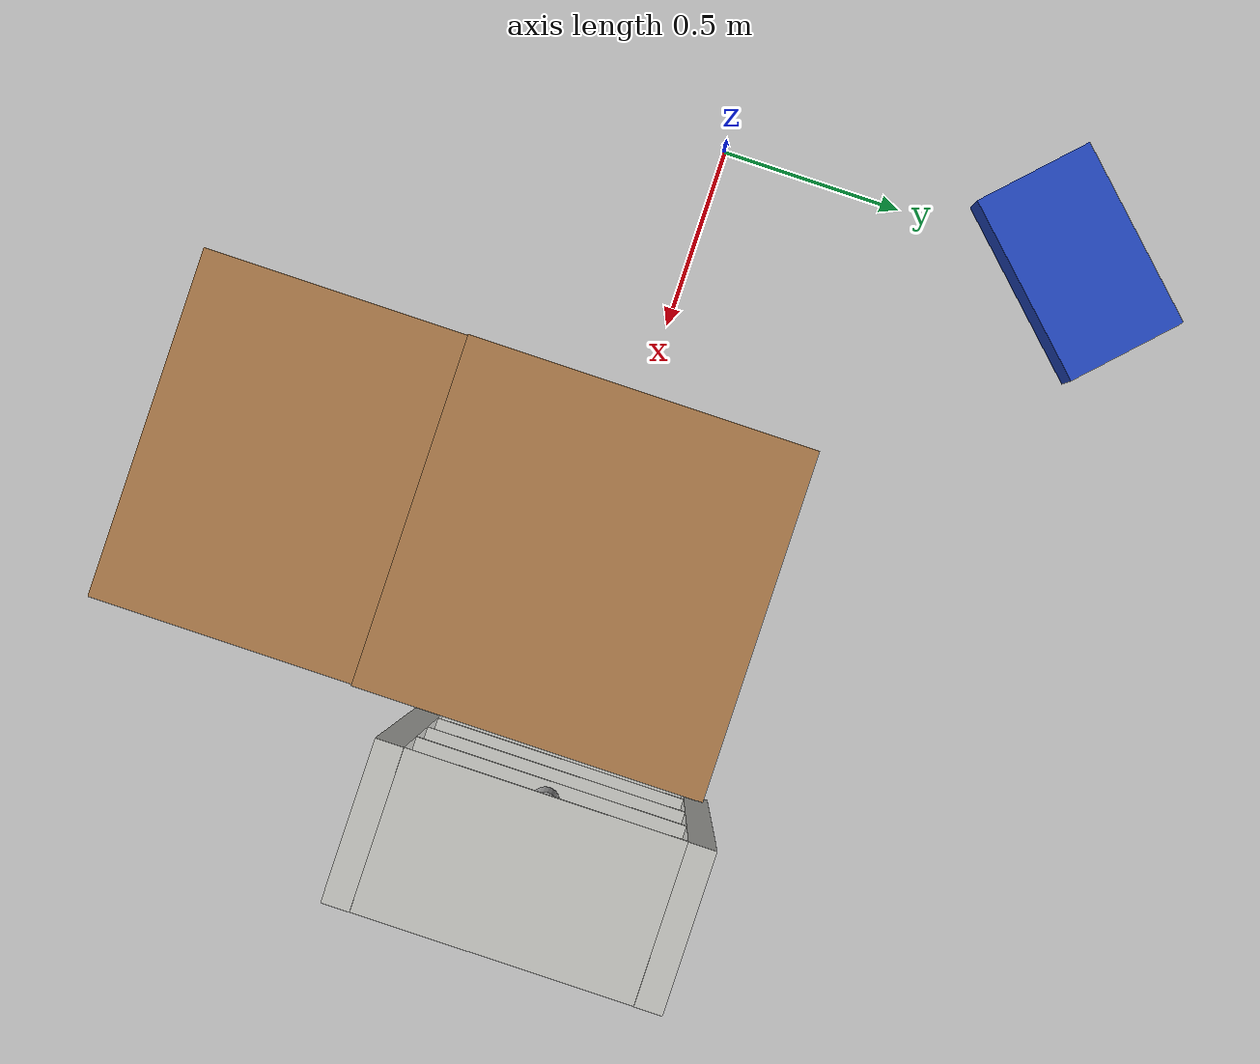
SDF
<?xml version="1.0" ?>
<sdf version="1.4">
  <!-- We use a custom world for the rrbot so that the camera angle is launched correctly -->

  <world name="default">

  <gravity>0 0 -9.81</gravity>

  <model name="ground_plane">
    <static>true</static>
    <link name="link">
      <collision name="collision">
        <geometry>
          <plane>
            <normal>0 0 1</normal>
            <size>100 100</size>
          </plane>
        </geometry>
        <surface>
          <friction>
            <ode>
              <mu>1</mu>
              <mu2>1</mu2>
            </ode>
          </friction>
        </surface>
      </collision>
      <visual name="visual">
        <cast_shadows>false</cast_shadows>
        <geometry>
          <plane>
            <normal>0 0 1</normal>
            <size>100 100</size>
          </plane>
        </geometry>
        <material>
          <script>
            <uri>file://media/materials/scripts/gazebo.material</uri>
            <name>Gazebo/Grey</name>
          </script>
        </material>
      </visual>
    </link>
  </model>

  <model name='pallet_1'>
      <pose frame=''>1.2 -0.88 0.0 0 0 0</pose>
      <link name='pallet_1'>
        <pose frame=''>0.0 0.0 0.065 0 0 1.57</pose>
        <inertial>
          <mass>5000</mass>
          <inertia>
            <ixx>400</ixx>       <!-- for a box: ixx = 0.083 * mass * (y*y + z*z) -->
            <ixy>0.0</ixy>         <!-- for a box: ixy = 0 -->
            <ixz>0.0</ixz>         <!-- for a box: ixz = 0 -->
            <iyy>400</iyy>       <!-- for a box: iyy = 0.083 * mass * (x*x + z*z) -->
            <iyz>0.0</iyz>         <!-- for a box: iyz = 0 -->
            <izz>600</izz>       <!-- for a box: izz = 0.083 * mass * (x*x + y*y) -->
          </inertia>
        </inertial>
        <collision name='pallet_1_Collision'>
          <geometry>
            <box>
              <size>0.76 1.0 0.13</size>
            </box>
          </geometry>
        </collision>
        <visual name='pallet_1_Visual'>
          <geometry>
            <box>
              <size>0.76 1.0 0.13</size>
            </box>
          </geometry>
          <material>
            <script>
              <uri>file://media/materials/scripts/gazebo.material</uri>
              <name>Gazebo/WoodPallet</name>
            </script>
            <ambient>1 1 1 1</ambient>
          </material>
          <meta>
            <layer>0</layer>
          </meta>
        </visual>
      </link>
  </model>

  <model name='pallet_2'>
      <pose frame=''>1.2 0.0 0.0 0 0 0</pose>
      <link name='pallet_2'>
        <pose frame=''>0.0 0.0 0.12 0 0 1.57</pose>
        <inertial>
          <mass>5000</mass>
          <inertia>
            <ixx>400</ixx>       <!-- for a box: ixx = 0.083 * mass * (y*y + z*z) -->
            <ixy>0.0</ixy>         <!-- for a box: ixy = 0 -->
            <ixz>0.0</ixz>         <!-- for a box: ixz = 0 -->
            <iyy>400</iyy>       <!-- for a box: iyy = 0.083 * mass * (x*x + z*z) 0.81-->
            <iyz>0.0</iyz>         <!-- for a box: iyz = 0 -->
            <izz>600</izz>       <!-- for a box: izz = 0.083 * mass * (x*x + y*y) -->
          </inertia>
        </inertial>
        <collision name='pallet_2_Collision'>
          <geometry>
            <box>
              <size>1.0 1.0 0.24</size>            </box>
          </geometry>
        </collision>
        <visual name='pallet_2_Visual'>
          <geometry>
            <box>
              <size>1.0 1.0 0.24</size>
            </box>
          </geometry>
          <material>
            <script>
              <uri>file://media/materials/scripts/gazebo.material</uri>
              <name>Gazebo/WoodPallet</name>
            </script>
            <ambient>1 1 1 1</ambient>
          </material>
          <meta>
            <layer>0</layer>
          </meta>
        </visual>
      </link>
  </model>

  <model name="shelf">
    <pose frame=''>2.1 0.1 0.0 0 0 -1.57</pose>
    <static>true</static>
    <link name="link">
      <inertial>
        <mass>1.0</mass>
      </inertial>
      <collision name="left_side">
        <pose>0.38 -0.2 1.25 0 0 0</pose>
        <geometry>
          <box>
            <size>0.07 0.4 2.5</size>
          </box>
        </geometry>
      </collision>
      <visual name="visual2">
        <pose>0.38 -0.2 1.25 0 0 0</pose>
        <geometry>
          <box>
            <size>0.07 0.4 2.5</size>
          </box>
        </geometry>
        <material>
          <script>
            <uri>file://media/materials/scripts/gazebo.material</uri>
            <name>Gazebo/CeilingTiled</name>
          </script>
        </material>
      </visual>
      <collision name="right_side">
        <pose>-0.38 -0.2 1.25 0 0 0</pose>
        <geometry>
          <box>
            <size>0.07 0.4 2.5</size>
          </box>
        </geometry>
      </collision>
      <visual name="visual3">
        <pose>-0.38 -0.2 1.25 0 0 0</pose>
        <geometry>
          <box>
            <size>0.07 0.4 2.5</size>
          </box>
        </geometry>
        <material>
          <script>
            <uri>file://media/materials/scripts/gazebo.material</uri>
            <name>Gazebo/CeilingTiled</name>
          </script>
        </material>
      </visual>
      <collision name="bottom">
        <pose>0 -0.2 0.005 0 0 0</pose>
        <geometry>
          <box>
            <size>0.69 0.4 0.01</size>
          </box>
        </geometry>
      </collision>
      <visual name="visual4">
        <pose>0 -0.2 0.005 0 0 0</pose>
        <geometry>
          <box>
            <size>0.69 0.4 0.01</size>
          </box>
        </geometry>
        <material>
          <script>
            <uri>file://media/materials/scripts/gazebo.material</uri>
            <name>Gazebo/CeilingTiled</name>
          </script>
        </material>
      </visual>
      <collision name="top">
        <pose>0 -0.2 2.485 0 0 0</pose>
        <geometry>
          <box>
            <size>0.69 0.4 0.01</size>
          </box>
        </geometry>
      </collision>
      <visual name="visual5">
        <pose>0 -0.2 2.485 0 0 0</pose>
        <geometry>
          <box>
            <size>0.69 0.4 0.01</size>
          </box>
        </geometry>
        <material>
          <script>
            <uri>file://media/materials/scripts/gazebo.material</uri>
            <name>Gazebo/CeilingTiled</name>
          </script>
        </material>
      </visual>
      <collision name="low_shelf">
        <pose>0 -0.2 0.415 0 0 0</pose>
        <geometry>
          <box>
            <size>0.69 0.4 0.01</size>
          </box>
        </geometry>
      </collision>
      <visual name="visual6">
        <pose>0 -0.2 0.415 0 0 0</pose>
        <geometry>
          <box>
            <size>0.69 0.4 0.01</size>
          </box>
        </geometry>
        <material>
          <script>
            <uri>file://media/materials/scripts/gazebo.material</uri>
            <name>Gazebo/CeilingTiled</name>
          </script>
        </material>
      </visual>
      <collision name="middle_shelf">
        <pose>0 -0.2 1.105 0 0 0</pose>
        <geometry>
          <box>
            <size>0.69 0.4 0.01</size>
          </box>
        </geometry>
      </collision>
      <visual name="visual7">
        <pose>0 -0.2 1.105 0 0 0</pose>
        <geometry>
          <box>
            <size>0.69 0.4 0.01</size>
          </box>
        </geometry>
        <material>
          <script>
            <uri>file://media/materials/scripts/gazebo.material</uri>
            <name>Gazebo/CeilingTiled</name>
          </script>
        </material>
      </visual>
      <collision name="high_shelf">
        <pose>0 -0.2 1.795 0 0 0</pose>
        <geometry>
          <box>
            <size>0.69 0.4 0.01</size>
          </box>
        </geometry>
      </collision>
      <visual name="visual8">
        <pose>0 -0.2 1.795 0 0 0</pose>
        <geometry>
          <box>
            <size>0.69 0.4 0.01</size>
          </box>
        </geometry>
        <material>
          <script>
            <uri>file://media/materials/scripts/gazebo.material</uri>
            <name>Gazebo/CeilingTiled</name>
          </script>
        </material>
      </visual>
    </link>
  </model>

  <model name='bottle'>
      <pose frame=''>1.75 0.1 1.8 0 0 0</pose>
      <link name='bottle'>
        <pose frame=''>0.0 0.0 0.135 0 0 0</pose>
        <inertial>
          <mass>0.05</mass>
          <inertia>
            <ixx>0.0001</ixx>
            <ixy>0.0</ixy>
            <ixz>0.0</ixz>
            <iyy>0.0001</iyy>
            <iyz>0.0</iyz>
            <izz>0.00001</izz>
          </inertia>
        </inertial>
        <collision name='bottle_Collision'>
          <geometry>
            <cylinder>
              <radius>0.035</radius>
              <length>0.27</length>
            </cylinder>
          </geometry>
        </collision>
        <visual name='bottle_Visual'>
          <geometry>
            <cylinder>
              <radius>0.035</radius>
              <length>0.27</length>
            </cylinder>
          </geometry>
        <material>
          <script>
            <uri>file://media/materials/scripts/gazebo.material</uri>
            <name>Gazebo/PioneerBody</name>
          </script>
        </material>
        </visual>
      </link>
  </model>

  <model name='box'>
      <pose frame=''>0.0 1.0 0.0 0 0 0.8</pose>
      <static>true</static>
      <link name='box'>
        <pose frame=''>0.0 0.0 0.1725 0 0 0.0</pose>
        <collision name="box_collision">
          <geometry>
            <box>
              <size>0.545 0.34 0.345</size>
            </box>
          </geometry>
        </collision>
        <visual name="box_visual">
          <geometry>
            <box>
              <size>0.545 0.34 0.345</size>
            </box>
          </geometry>
          <material>
            <script>
              <uri>file://media/materials/scripts/gazebo.material</uri>
              <name>Gazebo/Blue</name>
            </script>
          </material>
        </visual>
      </link>
  </model>

    <!-- Global light source -->
    <include>
      <uri>model://sun</uri>
    </include>

    <!-- Focus camera on tall pendulum -->
    <gui fullscreen='0'>
      <camera name='user_camera'>
        <pose>4.927360 -4.376610 3.740080 0.000000 0.275643 2.356190</pose>
        <view_controller>orbit</view_controller>
      </camera>
    </gui>

    <physics name="update_rate" type="ode">
      <real_time_update_rate>1000</real_time_update_rate>
      <max_step_size>0.001</max_step_size>
      <max_contacts>5</max_contacts>
      <bullet>
	<solver>
          <iters>100</iters>
          <sor>1.55</sor>
        </solver>
        <constraints>
          <contact_surface_layer>0.2</contact_surface_layer>
          <cfm>0.005</cfm>
          <erp>0.2</erp>
        </constraints>
      </bullet>
      <ode>
	<solver>
          <type>quick</type>
          <iters>50</iters>
          <sor>1.20</sor>
        </solver>
        <constraints>
          <contact_surface_layer>0.0002</contact_surface_layer>
          <contact_max_correcting_vel>500</contact_max_correcting_vel>
          <cfm>0.000001</cfm>
          <erp>0.3</erp>
        </constraints>
      </ode>
    </physics>

  </world>
</sdf>
